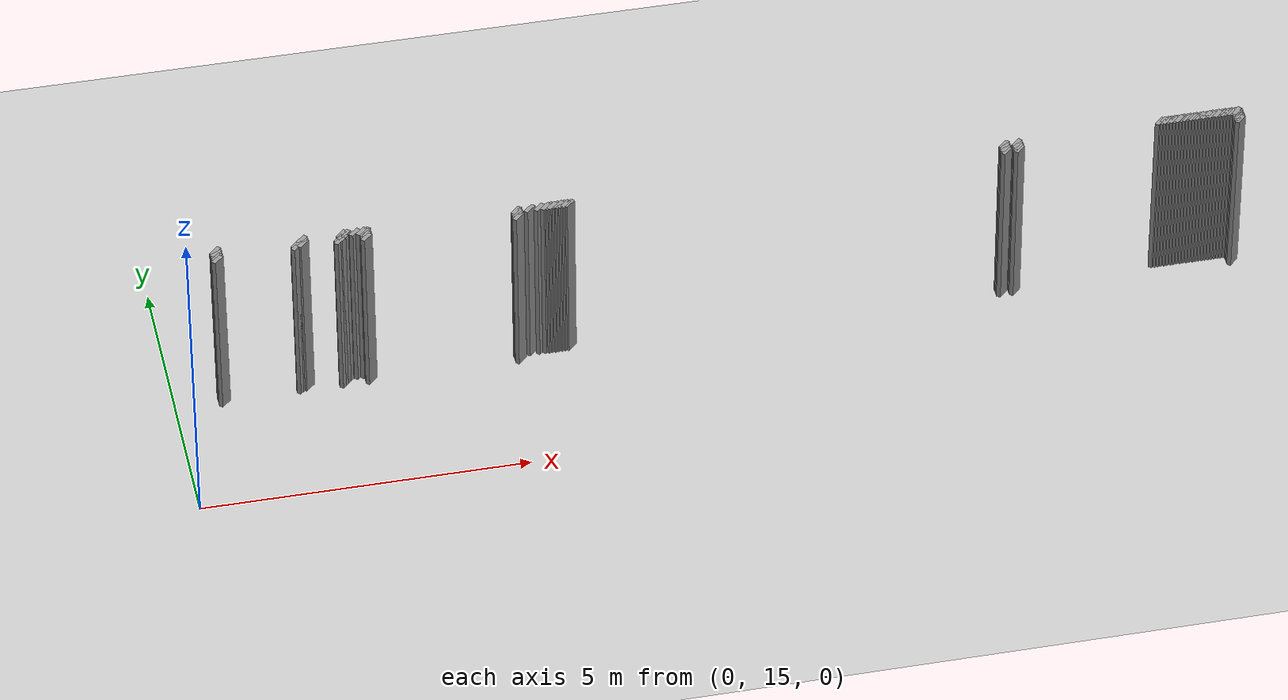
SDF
<sdf version="1.5">
 <world name="default">
  <include><uri>model://ground_plane</uri></include>
  <include><uri>model://sun</uri></include>
  <model name="grey_wall_224">
   <static>1</static>
   <link name="link">
    <pose>15.25 17.55  1.4 0 0 -0.7853981633974128</pose>
    <collision name="collision">
     <geometry><box><size>0.07071067811865325 .2  2.8</size></box></geometry>
    </collision>
    <visual name="visual">
     <cast_shadows>0</cast_shadows>
     <geometry><box><size>0.07071067811865325 .2  2.8</size></box></geometry>
     <material>
      <script>
       <uri>model://grey_wall/materials/scripts</uri>
       <uri>model://grey_wall/materials/textures</uri>
       <name>vrc/grey_wall</name>
      </script>
     </material>
    </visual>
   </link>
  </model>
  <model name="grey_wall_225">
   <static>1</static>
   <link name="link">
    <pose>15.3 17.55  1.4 0 0 -0.7853981633974128</pose>
    <collision name="collision">
     <geometry><box><size>0.07071067811865325 .2  2.8</size></box></geometry>
    </collision>
    <visual name="visual">
     <cast_shadows>0</cast_shadows>
     <geometry><box><size>0.07071067811865325 .2  2.8</size></box></geometry>
     <material>
      <script>
       <uri>model://grey_wall/materials/scripts</uri>
       <uri>model://grey_wall/materials/textures</uri>
       <name>vrc/grey_wall</name>
      </script>
     </material>
    </visual>
   </link>
  </model>
  <model name="grey_wall_226">
   <static>1</static>
   <link name="link">
    <pose>15.350000000000001 17.55  1.4 0 0 -0.7853981633974128</pose>
    <collision name="collision">
     <geometry><box><size>0.07071067811865325 .2  2.8</size></box></geometry>
    </collision>
    <visual name="visual">
     <cast_shadows>0</cast_shadows>
     <geometry><box><size>0.07071067811865325 .2  2.8</size></box></geometry>
     <material>
      <script>
       <uri>model://grey_wall/materials/scripts</uri>
       <uri>model://grey_wall/materials/textures</uri>
       <name>vrc/grey_wall</name>
      </script>
     </material>
    </visual>
   </link>
  </model>
  <model name="grey_wall_227">
   <static>1</static>
   <link name="link">
    <pose>15.4 17.55  1.4 0 0 -0.7853981633974128</pose>
    <collision name="collision">
     <geometry><box><size>0.07071067811865325 .2  2.8</size></box></geometry>
    </collision>
    <visual name="visual">
     <cast_shadows>0</cast_shadows>
     <geometry><box><size>0.07071067811865325 .2  2.8</size></box></geometry>
     <material>
      <script>
       <uri>model://grey_wall/materials/scripts</uri>
       <uri>model://grey_wall/materials/textures</uri>
       <name>vrc/grey_wall</name>
      </script>
     </material>
    </visual>
   </link>
  </model>
  <model name="grey_wall_228">
   <static>1</static>
   <link name="link">
    <pose>15.450000000000001 17.55  1.4 0 0 -0.7853981633974128</pose>
    <collision name="collision">
     <geometry><box><size>0.07071067811865325 .2  2.8</size></box></geometry>
    </collision>
    <visual name="visual">
     <cast_shadows>0</cast_shadows>
     <geometry><box><size>0.07071067811865325 .2  2.8</size></box></geometry>
     <material>
      <script>
       <uri>model://grey_wall/materials/scripts</uri>
       <uri>model://grey_wall/materials/textures</uri>
       <name>vrc/grey_wall</name>
      </script>
     </material>
    </visual>
   </link>
  </model>
  <model name="grey_wall_229">
   <static>1</static>
   <link name="link">
    <pose>15.5 17.55  1.4 0 0 -0.7853981633974128</pose>
    <collision name="collision">
     <geometry><box><size>0.07071067811865325 .2  2.8</size></box></geometry>
    </collision>
    <visual name="visual">
     <cast_shadows>0</cast_shadows>
     <geometry><box><size>0.07071067811865325 .2  2.8</size></box></geometry>
     <material>
      <script>
       <uri>model://grey_wall/materials/scripts</uri>
       <uri>model://grey_wall/materials/textures</uri>
       <name>vrc/grey_wall</name>
      </script>
     </material>
    </visual>
   </link>
  </model>
  <model name="grey_wall_230">
   <static>1</static>
   <link name="link">
    <pose>15.55 17.55  1.4 0 0 -0.7853981633974128</pose>
    <collision name="collision">
     <geometry><box><size>0.07071067811865325 .2  2.8</size></box></geometry>
    </collision>
    <visual name="visual">
     <cast_shadows>0</cast_shadows>
     <geometry><box><size>0.07071067811865325 .2  2.8</size></box></geometry>
     <material>
      <script>
       <uri>model://grey_wall/materials/scripts</uri>
       <uri>model://grey_wall/materials/textures</uri>
       <name>vrc/grey_wall</name>
      </script>
     </material>
    </visual>
   </link>
  </model>
  <model name="grey_wall_231">
   <static>1</static>
   <link name="link">
    <pose>15.600000000000001 17.55  1.4 0 0 -0.7853981633974128</pose>
    <collision name="collision">
     <geometry><box><size>0.07071067811865325 .2  2.8</size></box></geometry>
    </collision>
    <visual name="visual">
     <cast_shadows>0</cast_shadows>
     <geometry><box><size>0.07071067811865325 .2  2.8</size></box></geometry>
     <material>
      <script>
       <uri>model://grey_wall/materials/scripts</uri>
       <uri>model://grey_wall/materials/textures</uri>
       <name>vrc/grey_wall</name>
      </script>
     </material>
    </visual>
   </link>
  </model>
  <model name="grey_wall_232">
   <static>1</static>
   <link name="link">
    <pose>15.65 17.55  1.4 0 0 -0.7853981633974128</pose>
    <collision name="collision">
     <geometry><box><size>0.07071067811865325 .2  2.8</size></box></geometry>
    </collision>
    <visual name="visual">
     <cast_shadows>0</cast_shadows>
     <geometry><box><size>0.07071067811865325 .2  2.8</size></box></geometry>
     <material>
      <script>
       <uri>model://grey_wall/materials/scripts</uri>
       <uri>model://grey_wall/materials/textures</uri>
       <name>vrc/grey_wall</name>
      </script>
     </material>
    </visual>
   </link>
  </model>
  <model name="grey_wall_233">
   <static>1</static>
   <link name="link">
    <pose>15.700000000000001 17.55  1.4 0 0 -0.7853981633974128</pose>
    <collision name="collision">
     <geometry><box><size>0.07071067811865325 .2  2.8</size></box></geometry>
    </collision>
    <visual name="visual">
     <cast_shadows>0</cast_shadows>
     <geometry><box><size>0.07071067811865325 .2  2.8</size></box></geometry>
     <material>
      <script>
       <uri>model://grey_wall/materials/scripts</uri>
       <uri>model://grey_wall/materials/textures</uri>
       <name>vrc/grey_wall</name>
      </script>
     </material>
    </visual>
   </link>
  </model>
  <model name="grey_wall_234">
   <static>1</static>
   <link name="link">
    <pose>15.75 17.55  1.4 0 0 -0.7853981633974128</pose>
    <collision name="collision">
     <geometry><box><size>0.07071067811865325 .2  2.8</size></box></geometry>
    </collision>
    <visual name="visual">
     <cast_shadows>0</cast_shadows>
     <geometry><box><size>0.07071067811865325 .2  2.8</size></box></geometry>
     <material>
      <script>
       <uri>model://grey_wall/materials/scripts</uri>
       <uri>model://grey_wall/materials/textures</uri>
       <name>vrc/grey_wall</name>
      </script>
     </material>
    </visual>
   </link>
  </model>
  <model name="grey_wall_235">
   <static>1</static>
   <link name="link">
    <pose>15.8 17.55  1.4 0 0 -0.7853981633974128</pose>
    <collision name="collision">
     <geometry><box><size>0.07071067811865325 .2  2.8</size></box></geometry>
    </collision>
    <visual name="visual">
     <cast_shadows>0</cast_shadows>
     <geometry><box><size>0.07071067811865325 .2  2.8</size></box></geometry>
     <material>
      <script>
       <uri>model://grey_wall/materials/scripts</uri>
       <uri>model://grey_wall/materials/textures</uri>
       <name>vrc/grey_wall</name>
      </script>
     </material>
    </visual>
   </link>
  </model>
  <model name="grey_wall_236">
   <static>1</static>
   <link name="link">
    <pose>15.850000000000001 17.55  1.4 0 0 -0.7853981633974128</pose>
    <collision name="collision">
     <geometry><box><size>0.07071067811865325 .2  2.8</size></box></geometry>
    </collision>
    <visual name="visual">
     <cast_shadows>0</cast_shadows>
     <geometry><box><size>0.07071067811865325 .2  2.8</size></box></geometry>
     <material>
      <script>
       <uri>model://grey_wall/materials/scripts</uri>
       <uri>model://grey_wall/materials/textures</uri>
       <name>vrc/grey_wall</name>
      </script>
     </material>
    </visual>
   </link>
  </model>
  <model name="grey_wall_237">
   <static>1</static>
   <link name="link">
    <pose>15.9 17.55  1.4 0 0 -0.7853981633974128</pose>
    <collision name="collision">
     <geometry><box><size>0.07071067811865325 .2  2.8</size></box></geometry>
    </collision>
    <visual name="visual">
     <cast_shadows>0</cast_shadows>
     <geometry><box><size>0.07071067811865325 .2  2.8</size></box></geometry>
     <material>
      <script>
       <uri>model://grey_wall/materials/scripts</uri>
       <uri>model://grey_wall/materials/textures</uri>
       <name>vrc/grey_wall</name>
      </script>
     </material>
    </visual>
   </link>
  </model>
  <model name="grey_wall_238">
   <static>1</static>
   <link name="link">
    <pose>15.950000000000001 17.55  1.4 0 0 -0.7853981633974128</pose>
    <collision name="collision">
     <geometry><box><size>0.07071067811865325 .2  2.8</size></box></geometry>
    </collision>
    <visual name="visual">
     <cast_shadows>0</cast_shadows>
     <geometry><box><size>0.07071067811865325 .2  2.8</size></box></geometry>
     <material>
      <script>
       <uri>model://grey_wall/materials/scripts</uri>
       <uri>model://grey_wall/materials/textures</uri>
       <name>vrc/grey_wall</name>
      </script>
     </material>
    </visual>
   </link>
  </model>
  <model name="grey_wall_239">
   <static>1</static>
   <link name="link">
    <pose>16.0 17.55  1.4 0 0 -0.7853981633974305</pose>
    <collision name="collision">
     <geometry><box><size>0.07071067811865199 .2  2.8</size></box></geometry>
    </collision>
    <visual name="visual">
     <cast_shadows>0</cast_shadows>
     <geometry><box><size>0.07071067811865199 .2  2.8</size></box></geometry>
     <material>
      <script>
       <uri>model://grey_wall/materials/scripts</uri>
       <uri>model://grey_wall/materials/textures</uri>
       <name>vrc/grey_wall</name>
      </script>
     </material>
    </visual>
   </link>
  </model>
  <model name="grey_wall_240">
   <static>1</static>
   <link name="link">
    <pose>16.05 17.55  1.4 0 0 -0.7853981633974483</pose>
    <collision name="collision">
     <geometry><box><size>0.07071067811865074 .2  2.8</size></box></geometry>
    </collision>
    <visual name="visual">
     <cast_shadows>0</cast_shadows>
     <geometry><box><size>0.07071067811865074 .2  2.8</size></box></geometry>
     <material>
      <script>
       <uri>model://grey_wall/materials/scripts</uri>
       <uri>model://grey_wall/materials/textures</uri>
       <name>vrc/grey_wall</name>
      </script>
     </material>
    </visual>
   </link>
  </model>
  <model name="grey_wall_241">
   <static>1</static>
   <link name="link">
    <pose>16.1 17.55  1.4 0 0 -0.7853981633974483</pose>
    <collision name="collision">
     <geometry><box><size>0.07071067811865074 .2  2.8</size></box></geometry>
    </collision>
    <visual name="visual">
     <cast_shadows>0</cast_shadows>
     <geometry><box><size>0.07071067811865074 .2  2.8</size></box></geometry>
     <material>
      <script>
       <uri>model://grey_wall/materials/scripts</uri>
       <uri>model://grey_wall/materials/textures</uri>
       <name>vrc/grey_wall</name>
      </script>
     </material>
    </visual>
   </link>
  </model>
  <model name="grey_wall_242">
   <static>1</static>
   <link name="link">
    <pose>16.150000000000002 17.55  1.4 0 0 -0.7853981633974483</pose>
    <collision name="collision">
     <geometry><box><size>0.07071067811865074 .2  2.8</size></box></geometry>
    </collision>
    <visual name="visual">
     <cast_shadows>0</cast_shadows>
     <geometry><box><size>0.07071067811865074 .2  2.8</size></box></geometry>
     <material>
      <script>
       <uri>model://grey_wall/materials/scripts</uri>
       <uri>model://grey_wall/materials/textures</uri>
       <name>vrc/grey_wall</name>
      </script>
     </material>
    </visual>
   </link>
  </model>
  <model name="grey_wall_243">
   <static>1</static>
   <link name="link">
    <pose>16.2 17.55  1.4 0 0 -0.7853981633974483</pose>
    <collision name="collision">
     <geometry><box><size>0.07071067811865074 .2  2.8</size></box></geometry>
    </collision>
    <visual name="visual">
     <cast_shadows>0</cast_shadows>
     <geometry><box><size>0.07071067811865074 .2  2.8</size></box></geometry>
     <material>
      <script>
       <uri>model://grey_wall/materials/scripts</uri>
       <uri>model://grey_wall/materials/textures</uri>
       <name>vrc/grey_wall</name>
      </script>
     </material>
    </visual>
   </link>
  </model>
  <model name="grey_wall_244">
   <static>1</static>
   <link name="link">
    <pose>16.25 17.55  1.4 0 0 -0.7853981633974483</pose>
    <collision name="collision">
     <geometry><box><size>0.07071067811865074 .2  2.8</size></box></geometry>
    </collision>
    <visual name="visual">
     <cast_shadows>0</cast_shadows>
     <geometry><box><size>0.07071067811865074 .2  2.8</size></box></geometry>
     <material>
      <script>
       <uri>model://grey_wall/materials/scripts</uri>
       <uri>model://grey_wall/materials/textures</uri>
       <name>vrc/grey_wall</name>
      </script>
     </material>
    </visual>
   </link>
  </model>
  <model name="grey_wall_245">
   <static>1</static>
   <link name="link">
    <pose>16.3 17.55  1.4 0 0 -0.7853981633974483</pose>
    <collision name="collision">
     <geometry><box><size>0.07071067811865074 .2  2.8</size></box></geometry>
    </collision>
    <visual name="visual">
     <cast_shadows>0</cast_shadows>
     <geometry><box><size>0.07071067811865074 .2  2.8</size></box></geometry>
     <material>
      <script>
       <uri>model://grey_wall/materials/scripts</uri>
       <uri>model://grey_wall/materials/textures</uri>
       <name>vrc/grey_wall</name>
      </script>
     </material>
    </visual>
   </link>
  </model>
  <model name="grey_wall_246">
   <static>1</static>
   <link name="link">
    <pose>16.35 17.55  1.4 0 0 -0.7853981633974483</pose>
    <collision name="collision">
     <geometry><box><size>0.07071067811865074 .2  2.8</size></box></geometry>
    </collision>
    <visual name="visual">
     <cast_shadows>0</cast_shadows>
     <geometry><box><size>0.07071067811865074 .2  2.8</size></box></geometry>
     <material>
      <script>
       <uri>model://grey_wall/materials/scripts</uri>
       <uri>model://grey_wall/materials/textures</uri>
       <name>vrc/grey_wall</name>
      </script>
     </material>
    </visual>
   </link>
  </model>
  <model name="grey_wall_247">
   <static>1</static>
   <link name="link">
    <pose>16.400000000000002 17.55  1.4 0 0 -0.7853981633974483</pose>
    <collision name="collision">
     <geometry><box><size>0.07071067811865074 .2  2.8</size></box></geometry>
    </collision>
    <visual name="visual">
     <cast_shadows>0</cast_shadows>
     <geometry><box><size>0.07071067811865074 .2  2.8</size></box></geometry>
     <material>
      <script>
       <uri>model://grey_wall/materials/scripts</uri>
       <uri>model://grey_wall/materials/textures</uri>
       <name>vrc/grey_wall</name>
      </script>
     </material>
    </visual>
   </link>
  </model>
  <model name="grey_wall_248">
   <static>1</static>
   <link name="link">
    <pose>16.45 17.55  1.4 0 0 -0.7853981633974483</pose>
    <collision name="collision">
     <geometry><box><size>0.07071067811865074 .2  2.8</size></box></geometry>
    </collision>
    <visual name="visual">
     <cast_shadows>0</cast_shadows>
     <geometry><box><size>0.07071067811865074 .2  2.8</size></box></geometry>
     <material>
      <script>
       <uri>model://grey_wall/materials/scripts</uri>
       <uri>model://grey_wall/materials/textures</uri>
       <name>vrc/grey_wall</name>
      </script>
     </material>
    </visual>
   </link>
  </model>
  <model name="grey_wall_249">
   <static>1</static>
   <link name="link">
    <pose>0.75 17.5  1.4 0 0 -0.7853981633974194</pose>
    <collision name="collision">
     <geometry><box><size>0.07071067811865277 .2  2.8</size></box></geometry>
    </collision>
    <visual name="visual">
     <cast_shadows>0</cast_shadows>
     <geometry><box><size>0.07071067811865277 .2  2.8</size></box></geometry>
     <material>
      <script>
       <uri>model://grey_wall/materials/scripts</uri>
       <uri>model://grey_wall/materials/textures</uri>
       <name>vrc/grey_wall</name>
      </script>
     </material>
    </visual>
   </link>
  </model>
  <model name="grey_wall_250">
   <static>1</static>
   <link name="link">
    <pose>2.0500000000000003 17.5  1.4 0 0 -0.7853981633974216</pose>
    <collision name="collision">
     <geometry><box><size>0.07071067811865261 .2  2.8</size></box></geometry>
    </collision>
    <visual name="visual">
     <cast_shadows>0</cast_shadows>
     <geometry><box><size>0.07071067811865261 .2  2.8</size></box></geometry>
     <material>
      <script>
       <uri>model://grey_wall/materials/scripts</uri>
       <uri>model://grey_wall/materials/textures</uri>
       <name>vrc/grey_wall</name>
      </script>
     </material>
    </visual>
   </link>
  </model>
  <model name="grey_wall_251">
   <static>1</static>
   <link name="link">
    <pose>2.6500000000000004 17.5  1.4 0 0 -0.7853981633974216</pose>
    <collision name="collision">
     <geometry><box><size>0.07071067811865261 .2  2.8</size></box></geometry>
    </collision>
    <visual name="visual">
     <cast_shadows>0</cast_shadows>
     <geometry><box><size>0.07071067811865261 .2  2.8</size></box></geometry>
     <material>
      <script>
       <uri>model://grey_wall/materials/scripts</uri>
       <uri>model://grey_wall/materials/textures</uri>
       <name>vrc/grey_wall</name>
      </script>
     </material>
    </visual>
   </link>
  </model>
  <model name="grey_wall_252">
   <static>1</static>
   <link name="link">
    <pose>2.7 17.5  1.4 0 0 -0.7853981633974216</pose>
    <collision name="collision">
     <geometry><box><size>0.07071067811865261 .2  2.8</size></box></geometry>
    </collision>
    <visual name="visual">
     <cast_shadows>0</cast_shadows>
     <geometry><box><size>0.07071067811865261 .2  2.8</size></box></geometry>
     <material>
      <script>
       <uri>model://grey_wall/materials/scripts</uri>
       <uri>model://grey_wall/materials/textures</uri>
       <name>vrc/grey_wall</name>
      </script>
     </material>
    </visual>
   </link>
  </model>
  <model name="grey_wall_253">
   <static>1</static>
   <link name="link">
    <pose>2.85 17.5  1.4 0 0 -0.7853981633974216</pose>
    <collision name="collision">
     <geometry><box><size>0.07071067811865261 .2  2.8</size></box></geometry>
    </collision>
    <visual name="visual">
     <cast_shadows>0</cast_shadows>
     <geometry><box><size>0.07071067811865261 .2  2.8</size></box></geometry>
     <material>
      <script>
       <uri>model://grey_wall/materials/scripts</uri>
       <uri>model://grey_wall/materials/textures</uri>
       <name>vrc/grey_wall</name>
      </script>
     </material>
    </visual>
   </link>
  </model>
  <model name="grey_wall_254">
   <static>1</static>
   <link name="link">
    <pose>2.95 17.5  1.4 0 0 -0.7853981633974216</pose>
    <collision name="collision">
     <geometry><box><size>0.07071067811865261 .2  2.8</size></box></geometry>
    </collision>
    <visual name="visual">
     <cast_shadows>0</cast_shadows>
     <geometry><box><size>0.07071067811865261 .2  2.8</size></box></geometry>
     <material>
      <script>
       <uri>model://grey_wall/materials/scripts</uri>
       <uri>model://grey_wall/materials/textures</uri>
       <name>vrc/grey_wall</name>
      </script>
     </material>
    </visual>
   </link>
  </model>
  <model name="grey_wall_255">
   <static>1</static>
   <link name="link">
    <pose>3.0 17.5  1.4 0 0 -0.7853981633974216</pose>
    <collision name="collision">
     <geometry><box><size>0.07071067811865261 .2  2.8</size></box></geometry>
    </collision>
    <visual name="visual">
     <cast_shadows>0</cast_shadows>
     <geometry><box><size>0.07071067811865261 .2  2.8</size></box></geometry>
     <material>
      <script>
       <uri>model://grey_wall/materials/scripts</uri>
       <uri>model://grey_wall/materials/textures</uri>
       <name>vrc/grey_wall</name>
      </script>
     </material>
    </visual>
   </link>
  </model>
  <model name="grey_wall_256">
   <static>1</static>
   <link name="link">
    <pose>5.300000000000001 17.5  1.4 0 0 -0.7853981633974128</pose>
    <collision name="collision">
     <geometry><box><size>0.07071067811865325 .2  2.8</size></box></geometry>
    </collision>
    <visual name="visual">
     <cast_shadows>0</cast_shadows>
     <geometry><box><size>0.07071067811865325 .2  2.8</size></box></geometry>
     <material>
      <script>
       <uri>model://grey_wall/materials/scripts</uri>
       <uri>model://grey_wall/materials/textures</uri>
       <name>vrc/grey_wall</name>
      </script>
     </material>
    </visual>
   </link>
  </model>
  <model name="grey_wall_257">
   <static>1</static>
   <link name="link">
    <pose>5.5 17.5  1.4 0 0 -0.7853981633974128</pose>
    <collision name="collision">
     <geometry><box><size>0.07071067811865325 .2  2.8</size></box></geometry>
    </collision>
    <visual name="visual">
     <cast_shadows>0</cast_shadows>
     <geometry><box><size>0.07071067811865325 .2  2.8</size></box></geometry>
     <material>
      <script>
       <uri>model://grey_wall/materials/scripts</uri>
       <uri>model://grey_wall/materials/textures</uri>
       <name>vrc/grey_wall</name>
      </script>
     </material>
    </visual>
   </link>
  </model>
  <model name="grey_wall_258">
   <static>1</static>
   <link name="link">
    <pose>5.65 17.5  1.4 0 0 -0.7853981633974128</pose>
    <collision name="collision">
     <geometry><box><size>0.07071067811865325 .2  2.8</size></box></geometry>
    </collision>
    <visual name="visual">
     <cast_shadows>0</cast_shadows>
     <geometry><box><size>0.07071067811865325 .2  2.8</size></box></geometry>
     <material>
      <script>
       <uri>model://grey_wall/materials/scripts</uri>
       <uri>model://grey_wall/materials/textures</uri>
       <name>vrc/grey_wall</name>
      </script>
     </material>
    </visual>
   </link>
  </model>
  <model name="grey_wall_259">
   <static>1</static>
   <link name="link">
    <pose>5.75 17.5  1.4 0 0 -0.7853981633974128</pose>
    <collision name="collision">
     <geometry><box><size>0.07071067811865325 .2  2.8</size></box></geometry>
    </collision>
    <visual name="visual">
     <cast_shadows>0</cast_shadows>
     <geometry><box><size>0.07071067811865325 .2  2.8</size></box></geometry>
     <material>
      <script>
       <uri>model://grey_wall/materials/scripts</uri>
       <uri>model://grey_wall/materials/textures</uri>
       <name>vrc/grey_wall</name>
      </script>
     </material>
    </visual>
   </link>
  </model>
  <model name="grey_wall_260">
   <static>1</static>
   <link name="link">
    <pose>5.800000000000001 17.5  1.4 0 0 -0.7853981633974128</pose>
    <collision name="collision">
     <geometry><box><size>0.07071067811865325 .2  2.8</size></box></geometry>
    </collision>
    <visual name="visual">
     <cast_shadows>0</cast_shadows>
     <geometry><box><size>0.07071067811865325 .2  2.8</size></box></geometry>
     <material>
      <script>
       <uri>model://grey_wall/materials/scripts</uri>
       <uri>model://grey_wall/materials/textures</uri>
       <name>vrc/grey_wall</name>
      </script>
     </material>
    </visual>
   </link>
  </model>
  <model name="grey_wall_261">
   <static>1</static>
   <link name="link">
    <pose>5.8500000000000005 17.5  1.4 0 0 -0.7853981633974128</pose>
    <collision name="collision">
     <geometry><box><size>0.07071067811865325 .2  2.8</size></box></geometry>
    </collision>
    <visual name="visual">
     <cast_shadows>0</cast_shadows>
     <geometry><box><size>0.07071067811865325 .2  2.8</size></box></geometry>
     <material>
      <script>
       <uri>model://grey_wall/materials/scripts</uri>
       <uri>model://grey_wall/materials/textures</uri>
       <name>vrc/grey_wall</name>
      </script>
     </material>
    </visual>
   </link>
  </model>
  <model name="grey_wall_262">
   <static>1</static>
   <link name="link">
    <pose>5.9 17.5  1.4 0 0 -0.7853981633974128</pose>
    <collision name="collision">
     <geometry><box><size>0.07071067811865325 .2  2.8</size></box></geometry>
    </collision>
    <visual name="visual">
     <cast_shadows>0</cast_shadows>
     <geometry><box><size>0.07071067811865325 .2  2.8</size></box></geometry>
     <material>
      <script>
       <uri>model://grey_wall/materials/scripts</uri>
       <uri>model://grey_wall/materials/textures</uri>
       <name>vrc/grey_wall</name>
      </script>
     </material>
    </visual>
   </link>
  </model>
  <model name="grey_wall_263">
   <static>1</static>
   <link name="link">
    <pose>5.95 17.5  1.4 0 0 -0.7853981633974128</pose>
    <collision name="collision">
     <geometry><box><size>0.07071067811865325 .2  2.8</size></box></geometry>
    </collision>
    <visual name="visual">
     <cast_shadows>0</cast_shadows>
     <geometry><box><size>0.07071067811865325 .2  2.8</size></box></geometry>
     <material>
      <script>
       <uri>model://grey_wall/materials/scripts</uri>
       <uri>model://grey_wall/materials/textures</uri>
       <name>vrc/grey_wall</name>
      </script>
     </material>
    </visual>
   </link>
  </model>
  <model name="grey_wall_264">
   <static>1</static>
   <link name="link">
    <pose>6.0 17.5  1.4 0 0 -0.7853981633974128</pose>
    <collision name="collision">
     <geometry><box><size>0.07071067811865325 .2  2.8</size></box></geometry>
    </collision>
    <visual name="visual">
     <cast_shadows>0</cast_shadows>
     <geometry><box><size>0.07071067811865325 .2  2.8</size></box></geometry>
     <material>
      <script>
       <uri>model://grey_wall/materials/scripts</uri>
       <uri>model://grey_wall/materials/textures</uri>
       <name>vrc/grey_wall</name>
      </script>
     </material>
    </visual>
   </link>
  </model>
  <model name="grey_wall_265">
   <static>1</static>
   <link name="link">
    <pose>6.050000000000001 17.5  1.4 0 0 -0.7853981633974128</pose>
    <collision name="collision">
     <geometry><box><size>0.07071067811865325 .2  2.8</size></box></geometry>
    </collision>
    <visual name="visual">
     <cast_shadows>0</cast_shadows>
     <geometry><box><size>0.07071067811865325 .2  2.8</size></box></geometry>
     <material>
      <script>
       <uri>model://grey_wall/materials/scripts</uri>
       <uri>model://grey_wall/materials/textures</uri>
       <name>vrc/grey_wall</name>
      </script>
     </material>
    </visual>
   </link>
  </model>
  <model name="grey_wall_266">
   <static>1</static>
   <link name="link">
    <pose>6.1000000000000005 17.5  1.4 0 0 -0.7853981633974128</pose>
    <collision name="collision">
     <geometry><box><size>0.07071067811865325 .2  2.8</size></box></geometry>
    </collision>
    <visual name="visual">
     <cast_shadows>0</cast_shadows>
     <geometry><box><size>0.07071067811865325 .2  2.8</size></box></geometry>
     <material>
      <script>
       <uri>model://grey_wall/materials/scripts</uri>
       <uri>model://grey_wall/materials/textures</uri>
       <name>vrc/grey_wall</name>
      </script>
     </material>
    </visual>
   </link>
  </model>
  <model name="grey_wall_267">
   <static>1</static>
   <link name="link">
    <pose>12.8 17.5  1.4 0 0 -0.7853981633974128</pose>
    <collision name="collision">
     <geometry><box><size>0.07071067811865325 .2  2.8</size></box></geometry>
    </collision>
    <visual name="visual">
     <cast_shadows>0</cast_shadows>
     <geometry><box><size>0.07071067811865325 .2  2.8</size></box></geometry>
     <material>
      <script>
       <uri>model://grey_wall/materials/scripts</uri>
       <uri>model://grey_wall/materials/textures</uri>
       <name>vrc/grey_wall</name>
      </script>
     </material>
    </visual>
   </link>
  </model>
  <model name="grey_wall_268">
   <static>1</static>
   <link name="link">
    <pose>13.0 17.5  1.4 0 0 -0.7853981633974128</pose>
    <collision name="collision">
     <geometry><box><size>0.07071067811865325 .2  2.8</size></box></geometry>
    </collision>
    <visual name="visual">
     <cast_shadows>0</cast_shadows>
     <geometry><box><size>0.07071067811865325 .2  2.8</size></box></geometry>
     <material>
      <script>
       <uri>model://grey_wall/materials/scripts</uri>
       <uri>model://grey_wall/materials/textures</uri>
       <name>vrc/grey_wall</name>
      </script>
     </material>
    </visual>
   </link>
  </model>
  <model name="grey_wall_269">
   <static>1</static>
   <link name="link">
    <pose>16.45 17.5  1.4 0 0 -0.7853981633974483</pose>
    <collision name="collision">
     <geometry><box><size>0.07071067811865074 .2  2.8</size></box></geometry>
    </collision>
    <visual name="visual">
     <cast_shadows>0</cast_shadows>
     <geometry><box><size>0.07071067811865074 .2  2.8</size></box></geometry>
     <material>
      <script>
       <uri>model://grey_wall/materials/scripts</uri>
       <uri>model://grey_wall/materials/textures</uri>
       <name>vrc/grey_wall</name>
      </script>
     </material>
    </visual>
   </link>
  </model>
  <model name="grey_wall_270">
   <static>1</static>
   <link name="link">
    <pose>0.75 17.45  1.4 0 0 -0.7853981633974194</pose>
    <collision name="collision">
     <geometry><box><size>0.07071067811865277 .2  2.8</size></box></geometry>
    </collision>
    <visual name="visual">
     <cast_shadows>0</cast_shadows>
     <geometry><box><size>0.07071067811865277 .2  2.8</size></box></geometry>
     <material>
      <script>
       <uri>model://grey_wall/materials/scripts</uri>
       <uri>model://grey_wall/materials/textures</uri>
       <name>vrc/grey_wall</name>
      </script>
     </material>
    </visual>
   </link>
  </model>
  <model name="grey_wall_271">
   <static>1</static>
   <link name="link">
    <pose>2.0500000000000003 17.45  1.4 0 0 -0.7853981633974216</pose>
    <collision name="collision">
     <geometry><box><size>0.07071067811865261 .2  2.8</size></box></geometry>
    </collision>
    <visual name="visual">
     <cast_shadows>0</cast_shadows>
     <geometry><box><size>0.07071067811865261 .2  2.8</size></box></geometry>
     <material>
      <script>
       <uri>model://grey_wall/materials/scripts</uri>
       <uri>model://grey_wall/materials/textures</uri>
       <name>vrc/grey_wall</name>
      </script>
     </material>
    </visual>
   </link>
  </model>
  <model name="grey_wall_272">
   <static>1</static>
   <link name="link">
    <pose>2.6500000000000004 17.45  1.4 0 0 -0.7853981633974216</pose>
    <collision name="collision">
     <geometry><box><size>0.07071067811865261 .2  2.8</size></box></geometry>
    </collision>
    <visual name="visual">
     <cast_shadows>0</cast_shadows>
     <geometry><box><size>0.07071067811865261 .2  2.8</size></box></geometry>
     <material>
      <script>
       <uri>model://grey_wall/materials/scripts</uri>
       <uri>model://grey_wall/materials/textures</uri>
       <name>vrc/grey_wall</name>
      </script>
     </material>
    </visual>
   </link>
  </model>
  <model name="grey_wall_273">
   <static>1</static>
   <link name="link">
    <pose>3.0 17.45  1.4 0 0 -0.7853981633974216</pose>
    <collision name="collision">
     <geometry><box><size>0.07071067811865261 .2  2.8</size></box></geometry>
    </collision>
    <visual name="visual">
     <cast_shadows>0</cast_shadows>
     <geometry><box><size>0.07071067811865261 .2  2.8</size></box></geometry>
     <material>
      <script>
       <uri>model://grey_wall/materials/scripts</uri>
       <uri>model://grey_wall/materials/textures</uri>
       <name>vrc/grey_wall</name>
      </script>
     </material>
    </visual>
   </link>
  </model>
  <model name="grey_wall_274">
   <static>1</static>
   <link name="link">
    <pose>5.300000000000001 17.45  1.4 0 0 -0.7853981633974128</pose>
    <collision name="collision">
     <geometry><box><size>0.07071067811865325 .2  2.8</size></box></geometry>
    </collision>
    <visual name="visual">
     <cast_shadows>0</cast_shadows>
     <geometry><box><size>0.07071067811865325 .2  2.8</size></box></geometry>
     <material>
      <script>
       <uri>model://grey_wall/materials/scripts</uri>
       <uri>model://grey_wall/materials/textures</uri>
       <name>vrc/grey_wall</name>
      </script>
     </material>
    </visual>
   </link>
  </model>
  <model name="grey_wall_275">
   <static>1</static>
   <link name="link">
    <pose>12.8 17.45  1.4 0 0 -0.7853981633974128</pose>
    <collision name="collision">
     <geometry><box><size>0.07071067811865325 .2  2.8</size></box></geometry>
    </collision>
    <visual name="visual">
     <cast_shadows>0</cast_shadows>
     <geometry><box><size>0.07071067811865325 .2  2.8</size></box></geometry>
     <material>
      <script>
       <uri>model://grey_wall/materials/scripts</uri>
       <uri>model://grey_wall/materials/textures</uri>
       <name>vrc/grey_wall</name>
      </script>
     </material>
    </visual>
   </link>
  </model>
  <model name="grey_wall_276">
   <static>1</static>
   <link name="link">
    <pose>13.0 17.45  1.4 0 0 -0.7853981633974128</pose>
    <collision name="collision">
     <geometry><box><size>0.07071067811865325 .2  2.8</size></box></geometry>
    </collision>
    <visual name="visual">
     <cast_shadows>0</cast_shadows>
     <geometry><box><size>0.07071067811865325 .2  2.8</size></box></geometry>
     <material>
      <script>
       <uri>model://grey_wall/materials/scripts</uri>
       <uri>model://grey_wall/materials/textures</uri>
       <name>vrc/grey_wall</name>
      </script>
     </material>
    </visual>
   </link>
  </model>
  <model name="grey_wall_277">
   <static>1</static>
   <link name="link">
    <pose>16.45 17.45  1.4 0 0 -0.7853981633974483</pose>
    <collision name="collision">
     <geometry><box><size>0.07071067811865074 .2  2.8</size></box></geometry>
    </collision>
    <visual name="visual">
     <cast_shadows>0</cast_shadows>
     <geometry><box><size>0.07071067811865074 .2  2.8</size></box></geometry>
     <material>
      <script>
       <uri>model://grey_wall/materials/scripts</uri>
       <uri>model://grey_wall/materials/textures</uri>
       <name>vrc/grey_wall</name>
      </script>
     </material>
    </visual>
   </link>
  </model>
  <model name="grey_wall_278">
   <static>1</static>
   <link name="link">
    <pose>0.75 17.400000000000002  1.4 0 0 -0.7853981633974194</pose>
    <collision name="collision">
     <geometry><box><size>0.07071067811865277 .2  2.8</size></box></geometry>
    </collision>
    <visual name="visual">
     <cast_shadows>0</cast_shadows>
     <geometry><box><size>0.07071067811865277 .2  2.8</size></box></geometry>
     <material>
      <script>
       <uri>model://grey_wall/materials/scripts</uri>
       <uri>model://grey_wall/materials/textures</uri>
       <name>vrc/grey_wall</name>
      </script>
     </material>
    </visual>
   </link>
  </model>
  <model name="grey_wall_279">
   <static>1</static>
   <link name="link">
    <pose>1.9500000000000002 17.400000000000002  1.4 0 0 -0.7853981633974216</pose>
    <collision name="collision">
     <geometry><box><size>0.07071067811865261 .2  2.8</size></box></geometry>
    </collision>
    <visual name="visual">
     <cast_shadows>0</cast_shadows>
     <geometry><box><size>0.07071067811865261 .2  2.8</size></box></geometry>
     <material>
      <script>
       <uri>model://grey_wall/materials/scripts</uri>
       <uri>model://grey_wall/materials/textures</uri>
       <name>vrc/grey_wall</name>
      </script>
     </material>
    </visual>
   </link>
  </model>
  <model name="grey_wall_280">
   <static>1</static>
   <link name="link">
    <pose>2.0 17.400000000000002  1.4 0 0 -0.7853981633974216</pose>
    <collision name="collision">
     <geometry><box><size>0.07071067811865261 .2  2.8</size></box></geometry>
    </collision>
    <visual name="visual">
     <cast_shadows>0</cast_shadows>
     <geometry><box><size>0.07071067811865261 .2  2.8</size></box></geometry>
     <material>
      <script>
       <uri>model://grey_wall/materials/scripts</uri>
       <uri>model://grey_wall/materials/textures</uri>
       <name>vrc/grey_wall</name>
      </script>
     </material>
    </visual>
   </link>
  </model>
  <model name="grey_wall_281">
   <static>1</static>
   <link name="link">
    <pose>2.0500000000000003 17.400000000000002  1.4 0 0 -0.7853981633974216</pose>
    <collision name="collision">
     <geometry><box><size>0.07071067811865261 .2  2.8</size></box></geometry>
    </collision>
    <visual name="visual">
     <cast_shadows>0</cast_shadows>
     <geometry><box><size>0.07071067811865261 .2  2.8</size></box></geometry>
     <material>
      <script>
       <uri>model://grey_wall/materials/scripts</uri>
       <uri>model://grey_wall/materials/textures</uri>
       <name>vrc/grey_wall</name>
      </script>
     </material>
    </visual>
   </link>
  </model>
  <model name="grey_wall_282">
   <static>1</static>
   <link name="link">
    <pose>2.6 17.400000000000002  1.4 0 0 -0.7853981633974216</pose>
    <collision name="collision">
     <geometry><box><size>0.07071067811865261 .2  2.8</size></box></geometry>
    </collision>
    <visual name="visual">
     <cast_shadows>0</cast_shadows>
     <geometry><box><size>0.07071067811865261 .2  2.8</size></box></geometry>
     <material>
      <script>
       <uri>model://grey_wall/materials/scripts</uri>
       <uri>model://grey_wall/materials/textures</uri>
       <name>vrc/grey_wall</name>
      </script>
     </material>
    </visual>
   </link>
  </model>
  <model name="grey_wall_283">
   <static>1</static>
   <link name="link">
    <pose>2.6500000000000004 17.400000000000002  1.4 0 0 -0.7853981633974216</pose>
    <collision name="collision">
     <geometry><box><size>0.07071067811865261 .2  2.8</size></box></geometry>
    </collision>
    <visual name="visual">
     <cast_shadows>0</cast_shadows>
     <geometry><box><size>0.07071067811865261 .2  2.8</size></box></geometry>
     <material>
      <script>
       <uri>model://grey_wall/materials/scripts</uri>
       <uri>model://grey_wall/materials/textures</uri>
       <name>vrc/grey_wall</name>
      </script>
     </material>
    </visual>
   </link>
  </model>
  <model name="grey_wall_284">
   <static>1</static>
   <link name="link">
    <pose>3.0 17.400000000000002  1.4 0 0 -0.7853981633974216</pose>
    <collision name="collision">
     <geometry><box><size>0.07071067811865261 .2  2.8</size></box></geometry>
    </collision>
    <visual name="visual">
     <cast_shadows>0</cast_shadows>
     <geometry><box><size>0.07071067811865261 .2  2.8</size></box></geometry>
     <material>
      <script>
       <uri>model://grey_wall/materials/scripts</uri>
       <uri>model://grey_wall/materials/textures</uri>
       <name>vrc/grey_wall</name>
      </script>
     </material>
    </visual>
   </link>
  </model>
  <model name="grey_wall_285">
   <static>1</static>
   <link name="link">
    <pose>5.300000000000001 17.400000000000002  1.4 0 0 -0.7853981633974128</pose>
    <collision name="collision">
     <geometry><box><size>0.07071067811865325 .2  2.8</size></box></geometry>
    </collision>
    <visual name="visual">
     <cast_shadows>0</cast_shadows>
     <geometry><box><size>0.07071067811865325 .2  2.8</size></box></geometry>
     <material>
      <script>
       <uri>model://grey_wall/materials/scripts</uri>
       <uri>model://grey_wall/materials/textures</uri>
       <name>vrc/grey_wall</name>
      </script>
     </material>
    </visual>
   </link>
  </model>
  <model name="grey_wall_286">
   <static>1</static>
   <link name="link">
    <pose>12.8 17.400000000000002  1.4 0 0 -0.7853981633974128</pose>
    <collision name="collision">
     <geometry><box><size>0.07071067811865325 .2  2.8</size></box></geometry>
    </collision>
    <visual name="visual">
     <cast_shadows>0</cast_shadows>
     <geometry><box><size>0.07071067811865325 .2  2.8</size></box></geometry>
     <material>
      <script>
       <uri>model://grey_wall/materials/scripts</uri>
       <uri>model://grey_wall/materials/textures</uri>
       <name>vrc/grey_wall</name>
      </script>
     </material>
    </visual>
   </link>
  </model>
  <model name="grey_wall_287">
   <static>1</static>
   <link name="link">
    <pose>13.0 17.400000000000002  1.4 0 0 -0.7853981633974128</pose>
    <collision name="collision">
     <geometry><box><size>0.07071067811865325 .2  2.8</size></box></geometry>
    </collision>
    <visual name="visual">
     <cast_shadows>0</cast_shadows>
     <geometry><box><size>0.07071067811865325 .2  2.8</size></box></geometry>
     <material>
      <script>
       <uri>model://grey_wall/materials/scripts</uri>
       <uri>model://grey_wall/materials/textures</uri>
       <name>vrc/grey_wall</name>
      </script>
     </material>
    </visual>
   </link>
  </model>
  <model name="grey_wall_288">
   <static>1</static>
   <link name="link">
    <pose>16.45 17.400000000000002  1.4 0 0 -0.7853981633974483</pose>
    <collision name="collision">
     <geometry><box><size>0.07071067811865074 .2  2.8</size></box></geometry>
    </collision>
    <visual name="visual">
     <cast_shadows>0</cast_shadows>
     <geometry><box><size>0.07071067811865074 .2  2.8</size></box></geometry>
     <material>
      <script>
       <uri>model://grey_wall/materials/scripts</uri>
       <uri>model://grey_wall/materials/textures</uri>
       <name>vrc/grey_wall</name>
      </script>
     </material>
    </visual>
   </link>
  </model>
  <model name="grey_wall_289">
   <static>1</static>
   <link name="link">
    <pose>0.75 17.35  1.4 0 0 -0.7853981633974194</pose>
    <collision name="collision">
     <geometry><box><size>0.07071067811865277 .2  2.8</size></box></geometry>
    </collision>
    <visual name="visual">
     <cast_shadows>0</cast_shadows>
     <geometry><box><size>0.07071067811865277 .2  2.8</size></box></geometry>
     <material>
      <script>
       <uri>model://grey_wall/materials/scripts</uri>
       <uri>model://grey_wall/materials/textures</uri>
       <name>vrc/grey_wall</name>
      </script>
     </material>
    </visual>
   </link>
  </model>
  <model name="grey_wall_290">
   <static>1</static>
   <link name="link">
    <pose>1.9500000000000002 17.35  1.4 0 0 -0.7853981633974216</pose>
    <collision name="collision">
     <geometry><box><size>0.07071067811865261 .2  2.8</size></box></geometry>
    </collision>
    <visual name="visual">
     <cast_shadows>0</cast_shadows>
     <geometry><box><size>0.07071067811865261 .2  2.8</size></box></geometry>
     <material>
      <script>
       <uri>model://grey_wall/materials/scripts</uri>
       <uri>model://grey_wall/materials/textures</uri>
       <name>vrc/grey_wall</name>
      </script>
     </material>
    </visual>
   </link>
  </model>
  <model name="grey_wall_291">
   <static>1</static>
   <link name="link">
    <pose>2.6 17.35  1.4 0 0 -0.7853981633974216</pose>
    <collision name="collision">
     <geometry><box><size>0.07071067811865261 .2  2.8</size></box></geometry>
    </collision>
    <visual name="visual">
     <cast_shadows>0</cast_shadows>
     <geometry><box><size>0.07071067811865261 .2  2.8</size></box></geometry>
     <material>
      <script>
       <uri>model://grey_wall/materials/scripts</uri>
       <uri>model://grey_wall/materials/textures</uri>
       <name>vrc/grey_wall</name>
      </script>
     </material>
    </visual>
   </link>
  </model>
  <model name="grey_wall_292">
   <static>1</static>
   <link name="link">
    <pose>3.0 17.35  1.4 0 0 -0.7853981633974216</pose>
    <collision name="collision">
     <geometry><box><size>0.07071067811865261 .2  2.8</size></box></geometry>
    </collision>
    <visual name="visual">
     <cast_shadows>0</cast_shadows>
     <geometry><box><size>0.07071067811865261 .2  2.8</size></box></geometry>
     <material>
      <script>
       <uri>model://grey_wall/materials/scripts</uri>
       <uri>model://grey_wall/materials/textures</uri>
       <name>vrc/grey_wall</name>
      </script>
     </material>
    </visual>
   </link>
  </model>
  <model name="grey_wall_293">
   <static>1</static>
   <link name="link">
    <pose>5.300000000000001 17.35  1.4 0 0 -0.7853981633974128</pose>
    <collision name="collision">
     <geometry><box><size>0.07071067811865325 .2  2.8</size></box></geometry>
    </collision>
    <visual name="visual">
     <cast_shadows>0</cast_shadows>
     <geometry><box><size>0.07071067811865325 .2  2.8</size></box></geometry>
     <material>
      <script>
       <uri>model://grey_wall/materials/scripts</uri>
       <uri>model://grey_wall/materials/textures</uri>
       <name>vrc/grey_wall</name>
      </script>
     </material>
    </visual>
   </link>
  </model>
  <model name="grey_wall_294">
   <static>1</static>
   <link name="link">
    <pose>12.8 17.35  1.4 0 0 -0.7853981633974128</pose>
    <collision name="collision">
     <geometry><box><size>0.07071067811865325 .2  2.8</size></box></geometry>
    </collision>
    <visual name="visual">
     <cast_shadows>0</cast_shadows>
     <geometry><box><size>0.07071067811865325 .2  2.8</size></box></geometry>
     <material>
      <script>
       <uri>model://grey_wall/materials/scripts</uri>
       <uri>model://grey_wall/materials/textures</uri>
       <name>vrc/grey_wall</name>
      </script>
     </material>
    </visual>
   </link>
  </model>
  <model name="grey_wall_295">
   <static>1</static>
   <link name="link">
    <pose>13.0 17.35  1.4 0 0 -0.7853981633974128</pose>
    <collision name="collision">
     <geometry><box><size>0.07071067811865325 .2  2.8</size></box></geometry>
    </collision>
    <visual name="visual">
     <cast_shadows>0</cast_shadows>
     <geometry><box><size>0.07071067811865325 .2  2.8</size></box></geometry>
     <material>
      <script>
       <uri>model://grey_wall/materials/scripts</uri>
       <uri>model://grey_wall/materials/textures</uri>
       <name>vrc/grey_wall</name>
      </script>
     </material>
    </visual>
   </link>
  </model>
  <model name="grey_wall_296">
   <static>1</static>
   <link name="link">
    <pose>16.45 17.35  1.4 0 0 -0.7853981633974483</pose>
    <collision name="collision">
     <geometry><box><size>0.07071067811865074 .2  2.8</size></box></geometry>
    </collision>
    <visual name="visual">
     <cast_shadows>0</cast_shadows>
     <geometry><box><size>0.07071067811865074 .2  2.8</size></box></geometry>
     <material>
      <script>
       <uri>model://grey_wall/materials/scripts</uri>
       <uri>model://grey_wall/materials/textures</uri>
       <name>vrc/grey_wall</name>
      </script>
     </material>
    </visual>
   </link>
  </model>
  <model name="grey_wall_297">
   <static>1</static>
   <link name="link">
    <pose>0.75 17.3  1.4 0 0 -0.7853981633974194</pose>
    <collision name="collision">
     <geometry><box><size>0.07071067811865277 .2  2.8</size></box></geometry>
    </collision>
    <visual name="visual">
     <cast_shadows>0</cast_shadows>
     <geometry><box><size>0.07071067811865277 .2  2.8</size></box></geometry>
     <material>
      <script>
       <uri>model://grey_wall/materials/scripts</uri>
       <uri>model://grey_wall/materials/textures</uri>
       <name>vrc/grey_wall</name>
      </script>
     </material>
    </visual>
   </link>
  </model>
 </world>
</sdf>
